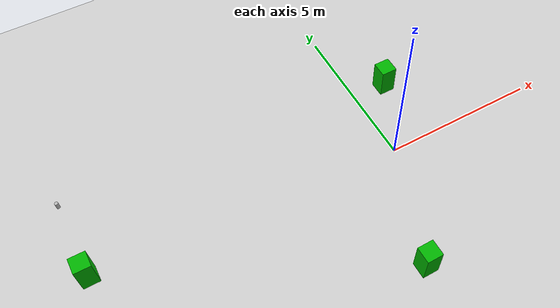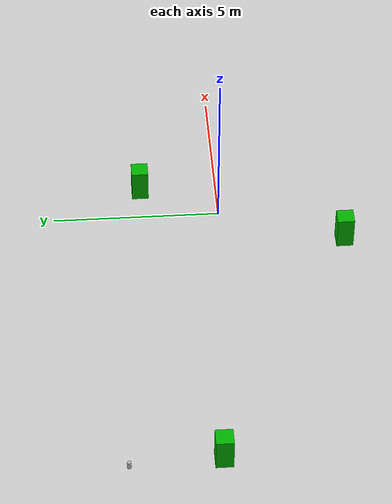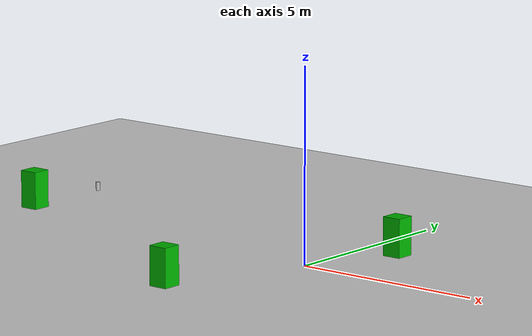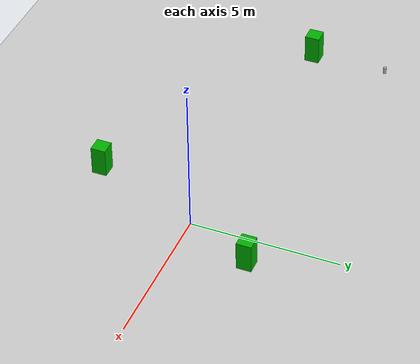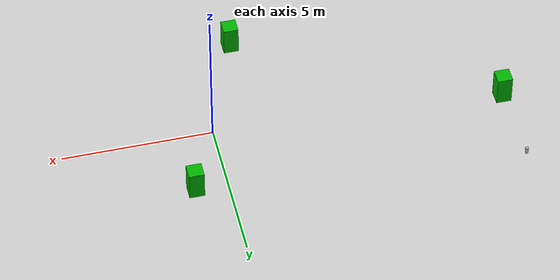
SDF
<sdf version="1.6">
 <world name="default">
  <model name="ground_plane">
   <static>1</static>
   <link name="link">
    <collision name="collision">
     <geometry><plane><normal>0 0 1</normal><size>100 100</size></plane></geometry>
     <surface><friction><ode><mu>100</mu><mu2>50</mu2></ode></friction></surface>
    </collision>
    <visual name="visual">
     <cast_shadows>0</cast_shadows>
     <geometry><plane><normal>0 0 1</normal><size>100 100</size></plane></geometry>
     <material>
      <script><uri>file://media/materials/scripts/gazebo.material</uri><name>Gazebo/Grey</name></script>
     </material>
    </visual>
   </link>
  </model>
  <model name="beer_4">
   <link name="link">
    <pose>0 0 0.115 0 -0 0</pose>
    <inertial>
     <mass>0.39</mass>
     <inertia><ixx>0.00058</ixx><ixy>0</ixy><ixz>0</ixz><iyy>0.00058</iyy><iyz>0</iyz><izz>0.00019</izz></inertia>
    </inertial>
    <collision name="collision">
     <geometry><cylinder><radius>0.055</radius><length>0.23</length></cylinder></geometry>
    </collision>
    <visual name="visual">
     <geometry><cylinder><radius>0.055</radius><length>0.23</length></cylinder></geometry>
     <material>
      <script>
       <uri>model://beer/materials/scripts</uri>
       <uri>model://beer/materials/textures</uri>
       <name>Beer/Diffuse</name>
      </script>
     </material>
    </visual>
   </link>
   <pose>-9.69551 3.16695 -8e-06 -1e-06 -0 -2.3e-05</pose>
  </model>
  <model name="green_box_clone">
   <link name="link_0">
    <inertial>
     <mass>0.248832</mass>
     <inertia>
      <ixx>0.0258912</ixx>
      <ixy>0</ixy>
      <ixz>0</ixz>
      <iyy>0.0259005</iyy>
      <iyz>0</iyz>
      <izz>0.0103197</izz>
     </inertia>
    </inertial>
    <visual name="visual">
     <geometry><box><size>0.499059 0.498611 1</size></box></geometry>
     <material>
      <lighting>1</lighting>
      <script><uri>file://media/materials/scripts/gazebo.material</uri><name>Gazebo/Grey</name></script>
      <shader type="vertex"><normal_map>__default__</normal_map></shader>
      <ambient>0 0.3 0 1</ambient>
      <diffuse>0 0.7 0 1</diffuse>
      <specular>0.01 0.01 0.01 1</specular>
      <emissive>0 0 0 1</emissive>
     </material>
    </visual>
    <collision name="collision">
     <geometry><box><size>0.499059 0.498611 1</size></box></geometry>
     <surface>
      <friction>
       <ode><mu>1</mu><mu2>1</mu2><fdir1>0 0 0</fdir1><slip1>0</slip1><slip2>0</slip2></ode>
       <torsional>
        <coefficient>1</coefficient>
        <patch_radius>0</patch_radius>
        <surface_radius>0</surface_radius>
        <use_patch_radius>1</use_patch_radius>
        <ode><slip>0</slip></ode>
       </torsional>
      </friction>
      <bounce><restitution_coefficient>0</restitution_coefficient><threshold>1e+06</threshold></bounce>
      <contact>
       <collide_without_contact>0</collide_without_contact>
       <collide_without_contact_bitmask>1</collide_without_contact_bitmask>
       <collide_bitmask>1</collide_bitmask>
       <ode>
        <soft_cfm>0</soft_cfm>
        <soft_erp>0.2</soft_erp>
        <kp>1e+13</kp>
        <kd>1</kd>
        <max_vel>0.01</max_vel>
        <min_depth>0</min_depth>
       </ode>
       <bullet>
        <split_impulse>1</split_impulse>
        <split_impulse_penetration_threshold>-0.01</split_impulse_penetration_threshold>
        <soft_cfm>0</soft_cfm>
        <soft_erp>0.2</soft_erp>
        <kp>1e+13</kp>
        <kd>1</kd>
       </bullet>
      </contact>
     </surface>
    </collision>
   </link>
   <static>0</static>
   <pose>-9.61082 0.59177 0.499997 6e-06 6e-06 0.000553</pose>
  </model>
  <model name="green_box_clone_0">
   <link name="link_0">
    <inertial>
     <mass>0.248832</mass>
     <inertia>
      <ixx>0.0258912</ixx>
      <ixy>0</ixy>
      <ixz>0</ixz>
      <iyy>0.0259005</iyy>
      <iyz>0</iyz>
      <izz>0.0103197</izz>
     </inertia>
    </inertial>
    <visual name="visual">
     <geometry><box><size>0.499059 0.498611 1</size></box></geometry>
     <material>
      <lighting>1</lighting>
      <script><uri>file://media/materials/scripts/gazebo.material</uri><name>Gazebo/Grey</name></script>
      <shader type="vertex"><normal_map>__default__</normal_map></shader>
      <ambient>0 0.3 0 1</ambient>
      <diffuse>0 0.7 0 1</diffuse>
      <specular>0.01 0.01 0.01 1</specular>
      <emissive>0 0 0 1</emissive>
     </material>
    </visual>
    <collision name="collision">
     <geometry><box><size>0.499059 0.498611 1</size></box></geometry>
     <surface>
      <friction>
       <ode><mu>1</mu><mu2>1</mu2><fdir1>0 0 0</fdir1><slip1>0</slip1><slip2>0</slip2></ode>
       <torsional>
        <coefficient>1</coefficient>
        <patch_radius>0</patch_radius>
        <surface_radius>0</surface_radius>
        <use_patch_radius>1</use_patch_radius>
        <ode><slip>0</slip></ode>
       </torsional>
      </friction>
      <bounce><restitution_coefficient>0</restitution_coefficient><threshold>1e+06</threshold></bounce>
      <contact>
       <collide_without_contact>0</collide_without_contact>
       <collide_without_contact_bitmask>1</collide_without_contact_bitmask>
       <collide_bitmask>1</collide_bitmask>
       <ode>
        <soft_cfm>0</soft_cfm>
        <soft_erp>0.2</soft_erp>
        <kp>1e+13</kp>
        <kd>1</kd>
        <max_vel>0.01</max_vel>
        <min_depth>0</min_depth>
       </ode>
       <bullet>
        <split_impulse>1</split_impulse>
        <split_impulse_penetration_threshold>-0.01</split_impulse_penetration_threshold>
        <soft_cfm>0</soft_cfm>
        <soft_erp>0.2</soft_erp>
        <kp>1e+13</kp>
        <kd>1</kd>
       </bullet>
      </contact>
     </surface>
    </collision>
   </link>
   <static>0</static>
   <pose>-1.37889 -3.68099 0.499998 -4e-06 -6e-06 6e-05</pose>
  </model>
  <model name="green_box_clone_1">
   <link name="link_0">
    <inertial>
     <mass>0.248832</mass>
     <inertia>
      <ixx>0.0258912</ixx>
      <ixy>0</ixy>
      <ixz>0</ixz>
      <iyy>0.0259005</iyy>
      <iyz>0</iyz>
      <izz>0.0103197</izz>
     </inertia>
    </inertial>
    <visual name="visual">
     <geometry><box><size>0.499059 0.498611 1</size></box></geometry>
     <material>
      <lighting>1</lighting>
      <script><uri>file://media/materials/scripts/gazebo.material</uri><name>Gazebo/Grey</name></script>
      <shader type="vertex"><normal_map>__default__</normal_map></shader>
      <ambient>0 0.3 0 1</ambient>
      <diffuse>0 0.7 0 1</diffuse>
      <specular>0.01 0.01 0.01 1</specular>
      <emissive>0 0 0 1</emissive>
     </material>
    </visual>
    <collision name="collision">
     <geometry><box><size>0.499059 0.498611 1</size></box></geometry>
     <surface>
      <friction>
       <ode><mu>1</mu><mu2>1</mu2><fdir1>0 0 0</fdir1><slip1>0</slip1><slip2>0</slip2></ode>
       <torsional>
        <coefficient>1</coefficient>
        <patch_radius>0</patch_radius>
        <surface_radius>0</surface_radius>
        <use_patch_radius>1</use_patch_radius>
        <ode><slip>0</slip></ode>
       </torsional>
      </friction>
      <bounce><restitution_coefficient>0</restitution_coefficient><threshold>1e+06</threshold></bounce>
      <contact>
       <collide_without_contact>0</collide_without_contact>
       <collide_without_contact_bitmask>1</collide_without_contact_bitmask>
       <collide_bitmask>1</collide_bitmask>
       <ode>
        <soft_cfm>0</soft_cfm>
        <soft_erp>0.2</soft_erp>
        <kp>1e+13</kp>
        <kd>1</kd>
        <max_vel>0.01</max_vel>
        <min_depth>0</min_depth>
       </ode>
       <bullet>
        <split_impulse>1</split_impulse>
        <split_impulse_penetration_threshold>-0.01</split_impulse_penetration_threshold>
        <soft_cfm>0</soft_cfm>
        <soft_erp>0.2</soft_erp>
        <kp>1e+13</kp>
        <kd>1</kd>
       </bullet>
      </contact>
     </surface>
    </collision>
   </link>
   <static>0</static>
   <pose>1.07399 2.33234 0.5 -1e-06 -1e-06 -9.9e-05</pose>
  </model>
 </world>
</sdf>
